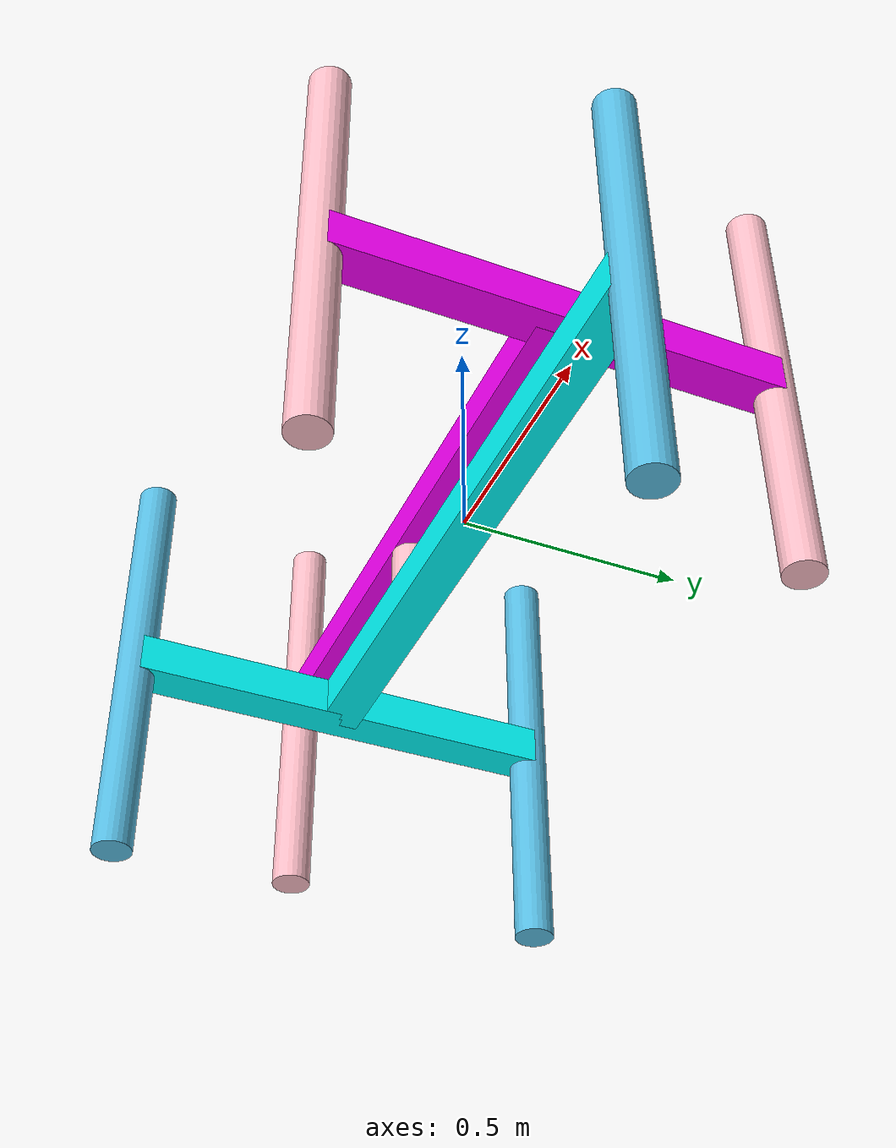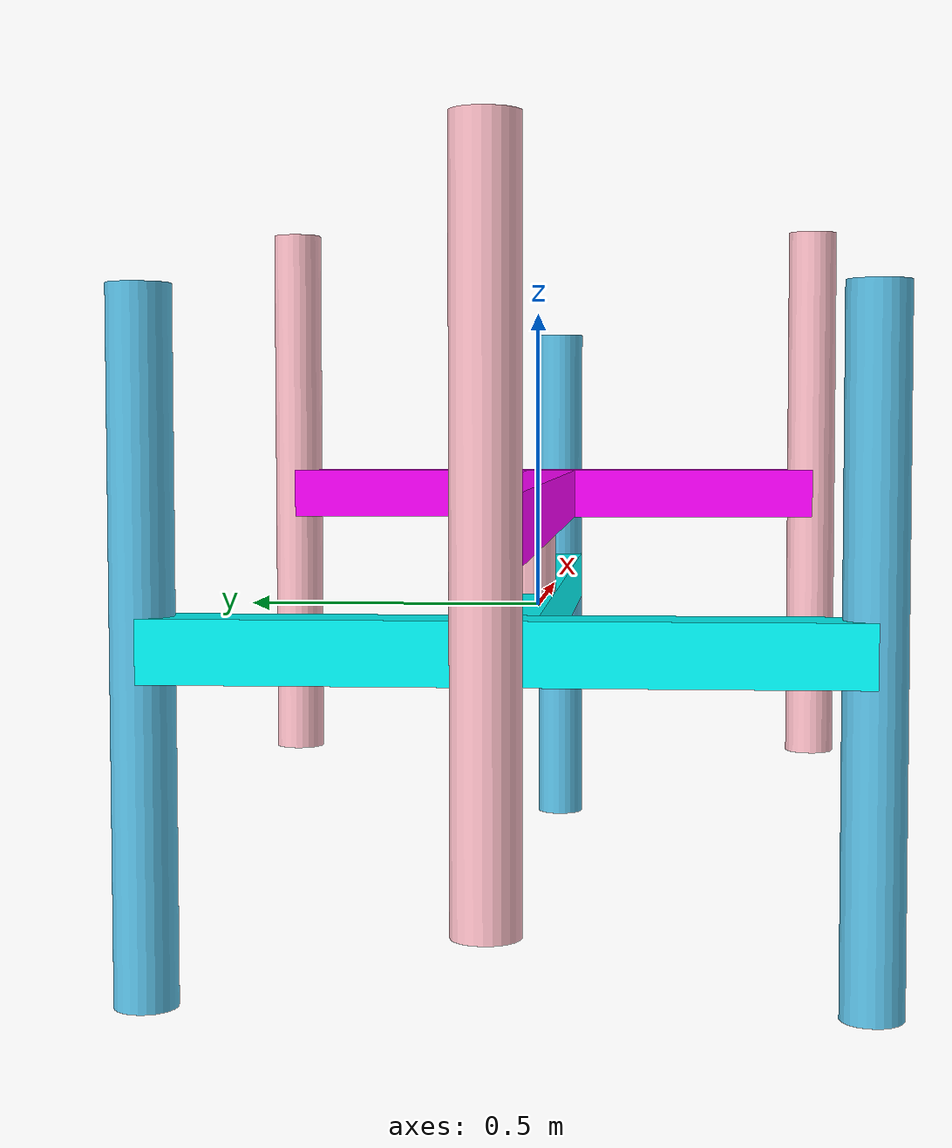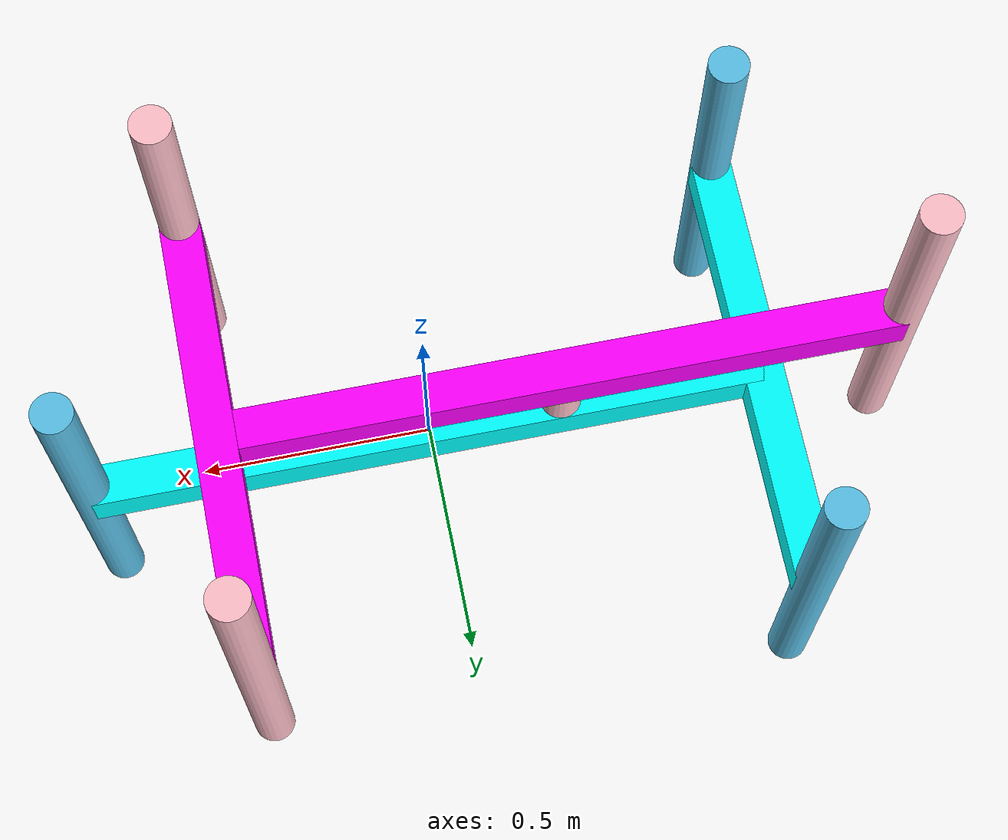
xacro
<?xml version="1.0"?>
<robot name="roboStilt" xmlns:xacro="http://www.ros.org/wiki/xacro" >  <!-- ROBOT NAME -->

<!-- PROPERTIES -->
<xacro:property name="leg_length" value="1.0" />
<xacro:property name="frame_length_x" value="1.5" />
<xacro:property name="frame_length_y" value="1.0" />
<xacro:property name="frame_thickness" value="0.09" />

<xacro:property name="limit_leg_lower" value="-0.9" />
<xacro:property name="limit_leg_upper" value="-0.1" />
<xacro:property name="limit_leg_velocity" value="0.5" />
<xacro:property name="limit_leg_effort" value="1000.0" />

<xacro:property name="limit_third_frame_prismatic_lower" value="${-1*frame_thickness}" />
<xacro:property name="limit_third_frame_prismatic_upper" value="${-1*frame_length_x/3.0}" />
<xacro:property name="limit_third_frame_prismatic_velocity" value="0.5" />
<xacro:property name="limit_third_frame_prismatic_effort" value="1000.0" />

<xacro:property name="limit_third_frame_revolute_lower" value="-0.5" />
<xacro:property name="limit_third_frame_revolute_upper" value="0.5" />
<xacro:property name="limit_third_frame_revolute_velocity" value="0.5" />
<xacro:property name="limit_third_frame_revolute_effort" value="1000.0" />

<!-- COLORS -->
      <material name="white">
        <color rgba="1 1 1 1"/>
      </material>

      <material name="black">
        <color rgba="0 0 0.0 1"/>
      </material>

      <material name="grey">
        <color rgba="0.7 0.7 0.7 1"/>
      </material>

      <material name="red">
        <color rgba="1 0 0 1"/>
      </material>

      <material name="orange">
        <color rgba="1 0.5 0.5 1"/>
      </material>-0.5

      <material name="green">
        <color rgba="0 1 0 1"/>
      </material>

      <material name="yellow">
        <color rgba="1 1 0 1"/>
      </material>

      <material name="cyan">
        <color rgba="0 1 1 1"/>
      </material>

      <material name="blue">
        <color rgba="0 0 1 1"/>
      </material>

      <material name="sky_blue">
        <color rgba="0.35 0.75 0.9 1"/>
      </material>

      <material name="magenta">
        <color rgba="1 0 1 1"/>
      </material>

      <material name="pink">
        <color rgba="1 0.75 0.79 1"/>
      </material>
<!-- LINKS -->

<!-- EVEN FRAME AND LEGS -->

  <link name="base_link">   <!-- The x pointing truss of the even frame, baselink origin at its center -->
    <visual>
      <geometry>
        <box size="${frame_length_x} ${frame_thickness} ${frame_thickness}"/>
      </geometry>
      <material name="cyan"/>
    </visual>
  </link>

  <link name="even_y_link">
    <visual>
      <geometry>
        <box size="${frame_thickness} ${frame_length_y} ${frame_thickness}"/>
      </geometry>
      <origin rpy="0 0 0" xyz="${-1*frame_length_x/2.0} 0 0"/>
      <material name="cyan"/>
    </visual>
  </link>

  <link name="leg_2">
    <visual>
      <geometry>
        <cylinder length="${leg_length}" radius="${frame_thickness/2.0}"/>
      </geometry>
      <origin rpy="0 0 0" xyz="0.0 0.0 ${leg_length/2.0}"/>
      <material name="sky_blue"/>
    </visual>
  </link>

    <link name="leg_4">
    <visual>
      <geometry>
        <cylinder length="${leg_length}" radius="${frame_thickness/2.0}"/>
      </geometry>
      <origin rpy="0 0 0" xyz="0 0 ${leg_length/2.0}"/>
      <material name="sky_blue"/>
    </visual>
  </link>

    <link name="leg_6">
    <visual>
      <geometry>
        <cylinder length="${leg_length}" radius="${frame_thickness/2.0}"/>
      </geometry>
      <origin rpy="0 0 0" xyz="0 0 ${leg_length/2.0}"/>
      <material name="sky_blue"/>
    </visual>
  </link>

<!-- ODD FRAME AND LEGS -->

  <link name="odd_x_link">   <!-- The x pointing truss of the even frame, baselink origin at its center -->
      <visual>
        <geometry>
          <box size="${frame_length_x} ${frame_thickness} ${frame_thickness}"/>
        </geometry>
        <material name="magenta"/>
      </visual>
    </link>

    <link name="odd_y_link">
      <visual>
        <geometry>
          <box size="${frame_thickness} ${frame_length_y} ${frame_thickness}"/>
        </geometry>
        <origin rpy="0 0 0" xyz="${frame_length_x/2.0} 0 0"/>
        <material name="magenta"/>
      </visual>
    </link>

    <link name="leg_1">
      <visual>
        <geometry>
          <cylinder length="${leg_length}" radius="${frame_thickness/2.0}"/>
        </geometry>
        <origin rpy="0 0 0" xyz="0.0 0.0 ${leg_length/2.0}"/>
        <material name="pink"/>
      </visual>
    </link>

      <link name="leg_3">
      <visual>
        <geometry>
          <cylinder length="${leg_length}" radius="${frame_thickness/2.0}"/>
        </geometry>
        <origin rpy="0 0 0" xyz="0.0 0.0 ${leg_length/2.0}"/>
        <material name="pink"/>
      </visual>
    </link>

      <link name="leg_5">
      <visual>
        <geometry>
          <cylinder length="${leg_length}" radius="${frame_thickness/2.0}"/>
        </geometry>
        <origin rpy="0 0 0" xyz="0.0 0.0 ${leg_length/2.0}"/>
        <material name="pink"/>
      </visual>
    </link>

<!-- ODD FRAME AND LEGS -->
    <link name="third_frame">
      <visual>
        <geometry>
          <cylinder length="${frame_thickness}" radius="${frame_thickness/2.0}"/>
        </geometry>
        <origin rpy="0 0 0" xyz="0.0 0.0 0.0"/>
        <material name="pink"/>
      </visual>
    </link>

<!-- JOINTS -->

<!-- EVEN -->

  <joint name="base_to_even_y" type="fixed">
    <parent link="base_link"/>
    <child link="even_y_link"/>
    <origin xyz="0.0 0.0 0.0"/>
  </joint>

    <joint name="base_to_leg_2" type="prismatic">
      <parent link="base_link"/>
      <child link="leg_2"/>
      <limit effort="${limit_leg_effort}" lower="${limit_leg_lower}" upper="${limit_leg_upper}" velocity="${limit_leg_velocity}"/>
      <axis xyz="0 0 1"/>
      <origin rpy="0 0 0" xyz="${frame_length_x/2.0} 0.0 0.0"/>
    </joint>

    <joint name="base_to_leg_4" type="prismatic">
      <parent link="base_link"/>
      <child link="leg_4"/>
      <limit effort="${limit_leg_effort}" lower="${limit_leg_lower}" upper="${limit_leg_upper}" velocity="${limit_leg_velocity}"/>
      <axis xyz="0 0 1"/>
      <origin rpy="0 0 0" xyz="${-1*frame_length_x/2.0} ${frame_length_y/2.0} 0.0"/>
    </joint>

    <joint name="base_to_leg_6" type="prismatic">
      <parent link="base_link"/>
      <child link="leg_6"/>
      <limit effort="${limit_leg_effort}" lower="${limit_leg_lower}" upper="${limit_leg_upper}" velocity="${limit_leg_velocity}"/>
      <axis xyz="0 0 1"/>
      <origin rpy="0 0 0" xyz="${-1*frame_length_x/2.0} ${-1*frame_length_y/2.0} 0.0"/>
    </joint>

<!-- THIRD FRAME -->
  <joint name="base_to_third_frame" type="prismatic">
      <parent link="base_link"/>
      <child link="third_frame"/>
      <origin xyz="0.0 0.0 ${frame_thickness}"/>
      <axis xyz="1 0 0"/>
      <limit effort="${limit_third_frame_prismatic_effort}" lower="${limit_third_frame_prismatic_lower}" upper="${limit_third_frame_prismatic_upper}" velocity="${limit_third_frame_prismatic_velocity}"/>
  </joint>

<!-- ODD -->
  <joint name="third_frame_to_odd_x" type="revolute">
      <parent link="third_frame"/>
      <child link="odd_x_link"/>
      <origin xyz="0.0 0.0 ${frame_thickness}"/>
      <axis xyz="0 0 1"/>
      <limit effort="${limit_third_frame_revolute_effort}" lower="${limit_third_frame_revolute_lower}" upper="${limit_third_frame_revolute_upper}" velocity="${limit_third_frame_revolute_velocity}"/>
  </joint>

  <joint name="odd_x_to_odd_y" type="fixed">
      <parent link="odd_x_link"/>
      <child link="odd_y_link"/>
      <origin xyz="0.0 0.0 0.0"/>
  </joint>

  <joint name="odd_x_to_leg_1" type="prismatic">
        <parent link="odd_x_link"/>
        <child link="leg_1"/>
        <limit effort="${limit_leg_effort}" lower="${limit_leg_lower}" upper="${limit_leg_upper}" velocity="${limit_leg_velocity}"/>
        <axis xyz="0 0 1"/>
        <origin rpy="0 0 0" xyz="${frame_length_x/2.0} ${frame_length_y/2.0} 0.0"/>
  </joint>

  <joint name="odd_x_to_leg_3" type="prismatic">
        <parent link="odd_x_link"/>
        <child link="leg_3"/>
        <limit effort="${limit_leg_effort}" lower="${limit_leg_lower}" upper="${limit_leg_upper}" velocity="${limit_leg_velocity}"/>
        <axis xyz="0 0 1"/>
        <origin rpy="0 0 0" xyz="${frame_length_x/2.0} ${-1*frame_length_y/2.0} 0.0"/>
  </joint>

  <joint name="odd_x_to_leg_5" type="prismatic">
        <parent link="odd_x_link"/>
        <child link="leg_5"/>
        <limit effort="${limit_leg_effort}" lower="${limit_leg_lower}" upper="${limit_leg_upper}" velocity="${limit_leg_velocity}"/>
        <axis xyz="0 0 1"/>
        <origin rpy="0 0 0" xyz="${-1*frame_length_x/2.0} 0.0 0.0"/>
  </joint>

</robot>
